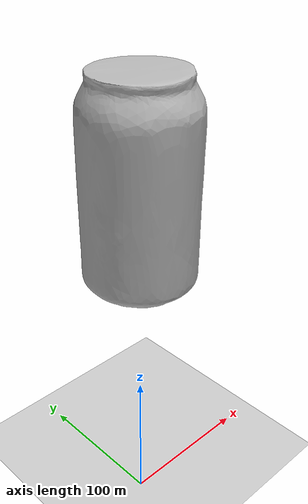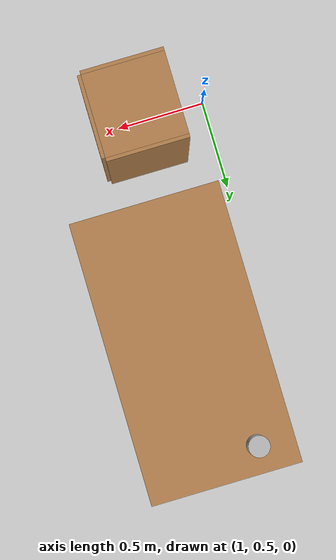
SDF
<sdf version="1.3">
 <world name="default">
  <physics type="ode">
   <gravity>0 0 -9.81</gravity>
   <update_rate>1000</update_rate>
   <ode>
    <solver><type>quick</type><dt>0.001</dt><iters>40</iters><sor>1.0</sor></solver>
    <constraints>
     <cfm>0.0</cfm>
     <erp>0.2</erp>
     <contact_max_correcting_vel>100.0</contact_max_correcting_vel>
     <contact_surface_layer>0.0</contact_surface_layer>
    </constraints>
   </ode>
  </physics>
  <include><uri>model://sun</uri></include>
  <include><uri>model://ground_plane</uri></include>
  <include><uri>model://mit_table</uri><pose>1.5  1.8 0.0 0 0 1.571</pose></include>
  <include><uri>model://duff_beer</uri><pose>1.3  2.4 1.18 0 0 0</pose></include>
  <include><uri>model://mit_coke_can</uri><pose>1.3  1.8 1.10 0 0 0</pose></include>
  <include><uri>model://mit_cabinet</uri><pose>1.40  0.55 0.0 0 0 0</pose></include>
  <plugin filename="libVRCPlugin.so" name="vrc_plugin">
   <atlas><model_name>atlas</model_name><pin_link>utorso</pin_link></atlas>
   <drc_vehicle>
    <model_name>drc_vehicle</model_name>
    <seat_link>polaris_ranger_ev::chassis</seat_link>
   </drc_vehicle>
   <drc_fire_hose>
    <fire_hose_model>fire_hose</fire_hose_model>
    <coupling_link>coupling</coupling_link>
    <standpipe_model>standpipe</standpipe_model>
    <spout_link>standpipe</spout_link>
    <thread_pitch>-1000</thread_pitch>
    <coupling_relative_pose>1.17038e-05 -0.125623 0.35 -0.0412152 -1.57078 1.61199</coupling_relative_pose>
   </drc_fire_hose>
  </plugin>
 </world>
</sdf>

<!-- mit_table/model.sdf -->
<sdf version="1.4">
    <model name="mit_table">
        <static>true</static>
        <link name="link">
            <collision name="surface">
                <pose>0 0 1.0 0 0 0</pose>
                <geometry>
                    <box>
                        <size>1.5 0.8 0.03</size>
                    </box>
                </geometry>
            </collision>
            <visual name="visual1">
                <pose>0 0 1.0 0 0 0</pose>
                <geometry>
                    <box>
                        <size>1.5 0.8 0.03</size>
                    </box>
                </geometry>
                <material>
                    <script>
                        <uri>file://media/materials/scripts/gazebo.material</uri>
                        <name>Gazebo/Wood</name>
                    </script>
                </material>
            </visual>
            <collision name="front_left_leg">
                <pose>0.68 0.38 0.5 0 0 0</pose>
                <geometry>
                    <cylinder>
                        <radius>0.02</radius>
                        <length>1.0</length>
                    </cylinder>
                </geometry>
            </collision>
            <visual name="front_left_leg">
                <pose>0.68 0.38 0.5 0 0 0</pose>
                <geometry>
                    <cylinder>
                        <radius>0.02</radius>
                        <length>1.0</length>
                    </cylinder>
                </geometry>
                <material>
                    <script>
                        <uri>file://media/materials/scripts/gazebo.material</uri>
                        <name>Gazebo/Grey</name>
                    </script>
                </material>
            </visual>
            <collision name="front_right_leg">
                <pose>0.68 -0.38 0.5 0 0 0</pose>
                <geometry>
                    <cylinder>
                        <radius>0.02</radius>
                        <length>1.0</length>
                    </cylinder>
                </geometry>
            </collision>
            <visual name="front_right_leg">
                <pose>0.68 -0.38 0.5 0 0 0</pose>
                <geometry>
                    <cylinder>
                        <radius>0.02</radius>
                        <length>1.0</length>
                    </cylinder>
                </geometry>
                <material>
                    <script>
                        <uri>file://media/materials/scripts/gazebo.material</uri>
                        <name>Gazebo/Grey</name>
                    </script>
                </material>
            </visual>
            <collision name="back_right_leg">
                <pose>-0.68 -0.38 0.5 0 0 0</pose>
                <geometry>
                    <cylinder>
                        <radius>0.02</radius>
                        <length>1.0</length>
                    </cylinder>
                </geometry>
            </collision>
            <visual name="back_right_leg">
                <pose>-0.68 -0.38 0.5 0 0 0</pose>
                <geometry>
                    <cylinder>
                        <radius>0.02</radius>
                        <length>1.0</length>
                    </cylinder>
                </geometry>
                <material>
                    <script>
                        <uri>file://media/materials/scripts/gazebo.material</uri>
                        <name>Gazebo/Grey</name>
                    </script>
                </material>
            </visual>
            <collision name="back_left_leg">
                <pose>-0.68 0.38 0.5 0 0 0</pose>
                <geometry>
                    <cylinder>
                        <radius>0.02</radius>
                        <length>1.0</length>
                    </cylinder>
                </geometry>
            </collision>
            <visual name="back_left_leg">
                <pose>-0.68 0.38 0.5 0 0 0</pose>
                <geometry>
                    <cylinder>
                        <radius>0.02</radius>
                        <length>1.0</length>
                    </cylinder>
                </geometry>
                <material>
                    <script>
                        <uri>file://media/materials/scripts/gazebo.material</uri>
                        <name>Gazebo/Grey</name>
                    </script>
                </material>
            </visual>
        </link>
    </model>
</sdf>

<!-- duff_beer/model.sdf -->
<sdf version="1.4">
    <model name="duff_beer">
        <link name="link">
            <inertial>
                <mass>0.390</mass>
                <inertia>
                    <ixx>0.00058</ixx>
                    <ixy>0</ixy>
                    <ixz>0</ixz>
                    <iyy>0.00058</iyy>
                    <iyz>0</iyz>
                    <izz>0.00019</izz>
                </inertia>
            </inertial>
            <pose>0 0 0 0 0 0</pose>
            <collision name="collision">
                <geometry>
                    <cylinder>
                        <radius>0.055000</radius>
                        <length>0.230000</length>
                    </cylinder>
                </geometry>
            </collision>
            <visual name="visual">
                <geometry>
                    <cylinder>
                        <radius>0.055000</radius>
                        <length>0.230000</length>
                    </cylinder>
                </geometry>
                <material>
                    <script>
                        <uri>model://duff_beer/materials/scripts</uri>
                        <uri>model://duff_beer/materials/textures</uri>
                        <name>DuffBeer/Diffuse</name>
                    </script>
                </material>
            </visual>
        </link>
    </model>
</sdf>

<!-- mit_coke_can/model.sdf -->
<sdf version="1.4">
    <model name="mit_coke_can">
        <link name="link">
            <inertial>
                <mass>0.390</mass>
                <inertia>
                    <ixx>0.00058</ixx>
                    <ixy>0</ixy>
                    <ixz>0</ixz>
                    <iyy>0.00058</iyy>
                    <iyz>0</iyz>
                    <izz>0.00019</izz>
                </inertia>
            </inertial>
            <collision name="collision">
                <pose>0 0 -0.46 0 0 0</pose>
                <geometry>
                    <mesh>
                        <uri>model://mit_coke_can/meshes/coke_can.dae</uri>
                    </mesh>
                </geometry>
            </collision>
            <visual name="visual">
                <pose>0 0 -0.46 0 0 0</pose>
                <geometry>
                    <mesh>
                        <uri>model://mit_coke_can/meshes/coke_can_copy.dae</uri>
                    </mesh>
                </geometry>
            </visual>
        </link>
    </model>
</sdf>

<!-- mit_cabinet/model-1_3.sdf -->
<sdf version="1.3">
  <model name="mit_cabinet">
    <static>true</static>
    <link name="cabinet_bottom_plate">
      <inertial>
        <pose>0 0 -1 0 0 0</pose>
        <inertia>
          <ixx>2.050000</ixx>
          <ixy>0</ixy>
          <ixz>0</ixz>
          <iyy>2.050000</iyy>
          <iyz>0</iyz>
          <izz>2.050000</izz>
        </inertia>
        <mass>25.000000</mass>
      </inertial>
      <collision name="cabinet_bottom_plate_geom">
        <pose>0 0 0.010000 0 0 0</pose>
        <geometry>
          <box>
            <size>0.450000 0.450000 0.020000</size>
          </box>
        </geometry>
      </collision>
      <visual name="cabinet_bottom_plate_geom_visual">
        <pose>0 0 0.010000 0 0 0</pose>
        <geometry>
          <box>
            <size>0.450000 0.450000 0.020000</size>
          </box>
        </geometry>
        <material>
          <script>
            <uri>file://media/materials/scripts/gazebo.material</uri>
            <name>Gazebo/Wood</name>
          </script>
        </material>
      </visual>
      <collision name="cabinet_bottom_plate_geom_cabinet_back_plate">
        <pose>0.235000 0 0.510000 0 0 0</pose>
        <geometry>
          <box>
            <size>0.020000 0.450000 1.020000</size>
          </box>
        </geometry>
      </collision>
      <visual name="cabinet_bottom_plate_geom_cabinet_back_plate_visual">
        <pose>0.235000 0 0.510000 0 0 0</pose>
        <geometry>
          <box>
            <size>0.020000 0.450000 1.020000</size>
          </box>
        </geometry>
        <material>
          <script>
            <uri>file://media/materials/scripts/gazebo.material</uri>
            <name>Gazebo/Wood</name>
          </script>
        </material>
      </visual>
      <collision name="cabinet_bottom_plate_geom_cabinet_left_plate">
        <pose>0 0.235000 0.510000 0 0 0</pose>
        <geometry>
          <box>
            <size>0.450000 0.020000 1.020000</size>
          </box>
        </geometry>
      </collision>
      <visual name="cabinet_bottom_plate_geom_cabinet_left_plate_visual">
        <pose>0 0.235000 0.510000 0 0 0</pose>
        <geometry>
          <box>
            <size>0.450000 0.020000 1.020000</size>
          </box>
        </geometry>
        <material>
          <script>
            <uri>file://media/materials/scripts/gazebo.material</uri>
            <name>Gazebo/Wood</name>
          </script>
        </material>
      </visual>
      <collision name="cabinet_bottom_plate_geom_cabinet_middle_plate">
        <pose>0 0 0.510000 0 0 0</pose>
        <geometry>
          <box>
            <size>0.450000 0.450000 0.020000</size>
          </box>
        </geometry>
      </collision>
      <visual name="cabinet_bottom_plate_geom_cabinet_middle_plate_visual">
        <pose>0 0 0.510000 0 0 0</pose>
        <geometry>
          <box>
            <size>0.450000 0.450000 0.020000</size>
          </box>
        </geometry>
        <material>
          <script>
            <uri>file://media/materials/scripts/gazebo.material</uri>
            <name>Gazebo/Wood</name>
          </script>
        </material>
      </visual>
      <collision name="cabinet_bottom_plate_geom_cabinet_right_plate">
        <pose>0 -0.235000 0.510000 0 0 0</pose>
        <geometry>
          <box>
            <size>0.450000 0.020000 1.020000</size>
          </box>
        </geometry>
      </collision>
      <visual name="cabinet_bottom_plate_geom_cabinet_right_plate_visual">
        <pose>0 -0.235000 0.510000 0 0 0</pose>
        <geometry>
          <box>
            <size>0.450000 0.020000 1.020000</size>
          </box>
        </geometry>
        <material>
          <script>
            <uri>file://media/materials/scripts/gazebo.material</uri>
            <name>Gazebo/Wood</name>
          </script>
        </material>
      </visual>
      <collision name="cabinet_bottom_plate_geom_cabinet_top_plate">
        <pose>0 0 1.010000 0 0 0</pose>
        <geometry>
          <box>
            <size>0.450000 0.450000 0.020000</size>
          </box>
        </geometry>
      </collision>
      <visual name="cabinet_bottom_plate_geom_cabinet_top_plate_visual">
        <pose>0 0 1.010000 0 0 0</pose>
        <geometry>
          <box>
            <size>0.450000 0.450000 0.020000</size>
          </box>
        </geometry>
        <material>
          <script>
            <uri>file://media/materials/scripts/gazebo.material</uri>
            <name>Gazebo/Wood</name>
          </script>
        </material>
      </visual>
    </link>
  </model>
</sdf>
